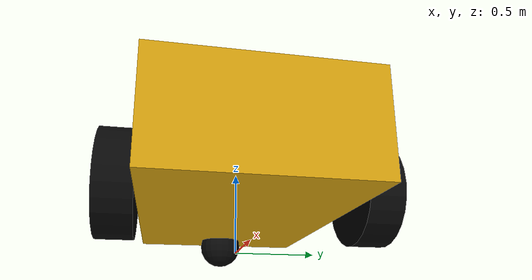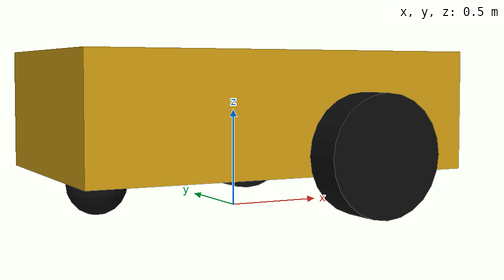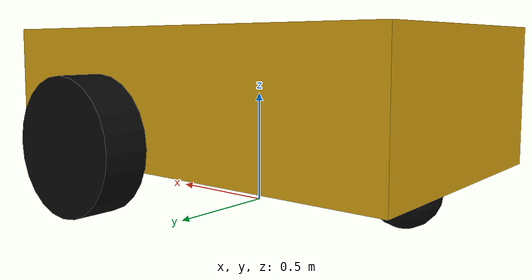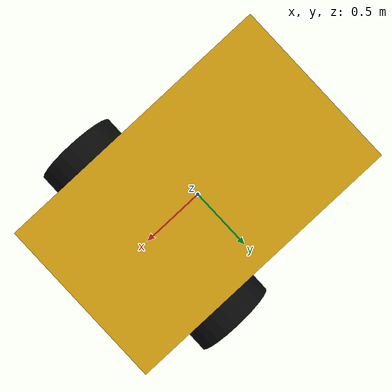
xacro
<?xml version="1.0"?>
<robot name="dumper" xmlns:xacro="http://www.ros.org/wiki/xacro">

  <!-- Arguments -->
  <xacro:arg name="prefix" default=""/>
  <xacro:arg name="robot_namespace" default="dumper1"/>

  <!-- Convenience properties -->
  <xacro:property name="prefix" value="$(arg prefix)"/>
  <xacro:property name="robot_namespace" value="$(arg robot_namespace)"/>

  <!-- Materials -->
  <material name="yellow">
    <color rgba="0.8 0.6 0.05 1.0"/>
  </material>

  <material name="black">
    <color rgba="0.03 0.03 0.03 1.0"/>
  </material>

  <!-- ================= BASE CHASSIS ================= -->

  <link name="${prefix}base_link">
    <visual>
      <origin xyz="0 0 0.50"/>
      <geometry>
        <box size="2.0 1.2 0.6"/>
      </geometry>
      <material name="yellow"/>
    </visual>

    <collision>
      <origin xyz="0 0 0.50"/>
      <geometry>
        <box size="2.0 1.2 0.6"/>
      </geometry>
    </collision>

    <inertial>
      <origin xyz="0 0 0.50"/>
      <mass value="80"/>
      <inertia
        ixx="12"
        ixy="0"
        ixz="0"
        iyy="30"
        iyz="0"
        izz="36"/>
    </inertial>
  </link>

  <!-- ================= LEFT WHEEL ================= -->

  <link name="${prefix}left_wheel">
    <visual>
      <origin rpy="1.5708 0 0"/>
      <geometry>
        <cylinder radius="0.30" length="0.20"/>
      </geometry>
      <material name="black"/>
    </visual>

    <collision>
      <origin rpy="1.5708 0 0"/>
      <geometry>
        <cylinder radius="0.30" length="0.20"/>
      </geometry>
    </collision>

    <inertial>
      <mass value="5"/>
      <inertia
        ixx="0.3"
        ixy="0"
        ixz="0"
        iyy="0.3"
        iyz="0"
        izz="0.3"/>
    </inertial>
  </link>

  <joint name="${prefix}left_wheel_joint" type="continuous">
    <parent link="${prefix}base_link"/>
    <child link="${prefix}left_wheel"/>
    <origin xyz="0.4 0.70 0.30"/>
    <axis xyz="0 1 0"/>
  </joint>

  <!-- ================= RIGHT WHEEL ================= -->

  <link name="${prefix}right_wheel">
    <visual>
      <origin rpy="1.5708 0 0"/>
      <geometry>
        <cylinder radius="0.30" length="0.20"/>
      </geometry>
      <material name="black"/>
    </visual>

    <collision>
      <origin rpy="1.5708 0 0"/>
      <geometry>
        <cylinder radius="0.30" length="0.20"/>
      </geometry>
    </collision>

    <inertial>
      <mass value="5"/>
      <inertia
        ixx="0.3"
        ixy="0"
        ixz="0"
        iyy="0.3"
        iyz="0"
        izz="0.3"/>
    </inertial>
  </link>

  <joint name="${prefix}right_wheel_joint" type="continuous">
    <parent link="${prefix}base_link"/>
    <child link="${prefix}right_wheel"/>
    <origin xyz="0.4 -0.70 0.30"/>
    <axis xyz="0 1 0"/>
  </joint>

  <!-- ================= CASTER ================= -->

  <link name="${prefix}caster">
    <visual>
      <geometry>
        <sphere radius="0.15"/>
      </geometry>
      <material name="black"/>
    </visual>

    <collision>
      <geometry>
        <sphere radius="0.15"/>
      </geometry>
    </collision>

    <inertial>
      <mass value="1"/>
      <inertia
        ixx="0.01"
        ixy="0"
        ixz="0"
        iyy="0.01"
        iyz="0"
        izz="0.01"/>
    </inertial>
  </link>

  <joint name="${prefix}caster_joint" type="fixed">
    <parent link="${prefix}base_link"/>
    <child link="${prefix}caster"/>
    <origin xyz="-0.75 0 0.15"/>
  </joint>

  <gazebo reference="${prefix}caster">
    <mu1>0.001</mu1>
    <mu2>0.001</mu2>
  </gazebo>

  <!-- ================= LIDAR ================= -->

  <link name="${prefix}lidar_link">
    <visual>
      <geometry>
        <cylinder radius="0.08" length="0.10"/>
      </geometry>
      <material name="black"/>
    </visual>

    <collision>
      <geometry>
        <cylinder radius="0.08" length="0.10"/>
      </geometry>
    </collision>

    <inertial>
      <mass value="0.1"/>
      <inertia
        ixx="0.001"
        ixy="0"
        ixz="0"
        iyy="0.001"
        iyz="0"
        izz="0.001"/>
    </inertial>
  </link>

  <joint name="${prefix}lidar_joint" type="fixed">
    <parent link="${prefix}base_link"/>
    <child link="${prefix}lidar_link"/>
    <origin xyz="0.8 0 0.70" rpy="0 0 0"/>
  </joint>

  <gazebo reference="${prefix}lidar_link">
    <sensor name="${robot_namespace}_lidar_sensor" type="gpu_lidar">
      <always_on>true</always_on>
      <visualize>true</visualize>
      <update_rate>10</update_rate>

      <topic>/${robot_namespace}/scan</topic>
      <gz_frame_id>${robot_namespace}/lidar_link</gz_frame_id>

      <lidar>
        <scan>
          <horizontal>
            <samples>360</samples>
            <resolution>1</resolution>
            <min_angle>-3.14159</min_angle>
            <max_angle>3.14159</max_angle>
          </horizontal>

          <vertical>
            <samples>1</samples>
            <resolution>1</resolution>
            <min_angle>0</min_angle>
            <max_angle>0</max_angle>
          </vertical>
        </scan>

        <range>
          <min>0.2</min>
          <max>30.0</max>
          <resolution>0.01</resolution>
        </range>
      </lidar>
    </sensor>
  </gazebo>

  <!-- ================= IMU ================= -->

  <link name="${prefix}imu_link">
    <inertial>
      <mass value="0.01"/>
      <origin xyz="0 0 0"/>

      <inertia
        ixx="0.00001"
        ixy="0"
        ixz="0"
        iyy="0.00001"
        iyz="0"
        izz="0.00001"/>
    </inertial>
  </link>

  <joint name="${prefix}imu_joint" type="fixed">
    <parent link="${prefix}base_link"/>
    <child link="${prefix}imu_link"/>
    <origin xyz="0 0 0.65" rpy="0 0 0"/>
  </joint>

  <gazebo reference="${prefix}imu_joint">
    <preserveFixedJoint>true</preserveFixedJoint>
  </gazebo>

  <gazebo reference="${prefix}imu_link">
    <sensor name="${robot_namespace}_imu_sensor" type="imu">
      <always_on>true</always_on>
      <update_rate>100</update_rate>

      <topic>/${robot_namespace}/imu/data</topic>
      <gz_frame_id>${robot_namespace}/imu_link</gz_frame_id>
    </sensor>
  </gazebo>

  <!-- ================= GAZEBO DIFF DRIVE ================= -->

  <gazebo>
    <plugin
      filename="gz-sim-diff-drive-system"
      name="gz::sim::systems::DiffDrive">

      <left_joint>${prefix}left_wheel_joint</left_joint>
      <right_joint>${prefix}right_wheel_joint</right_joint>

      <wheel_separation>1.4</wheel_separation>
      <wheel_radius>0.30</wheel_radius>

      <topic>/${robot_namespace}/cmd_vel</topic>

      <odom_topic>/${robot_namespace}/odom</odom_topic>

      <frame_id>${robot_namespace}/odom</frame_id>
      <child_frame_id>${robot_namespace}/base_link</child_frame_id>

      <odom_publish_frequency>30</odom_publish_frequency>

      <publish_odom_tf>false</publish_odom_tf>
    </plugin>

    <plugin
      filename="gz-sim-joint-state-publisher-system"
      name="gz::sim::systems::JointStatePublisher">

      <joint_name>${prefix}left_wheel_joint</joint_name>
      <joint_name>${prefix}right_wheel_joint</joint_name>

    </plugin>
  </gazebo>

</robot>
